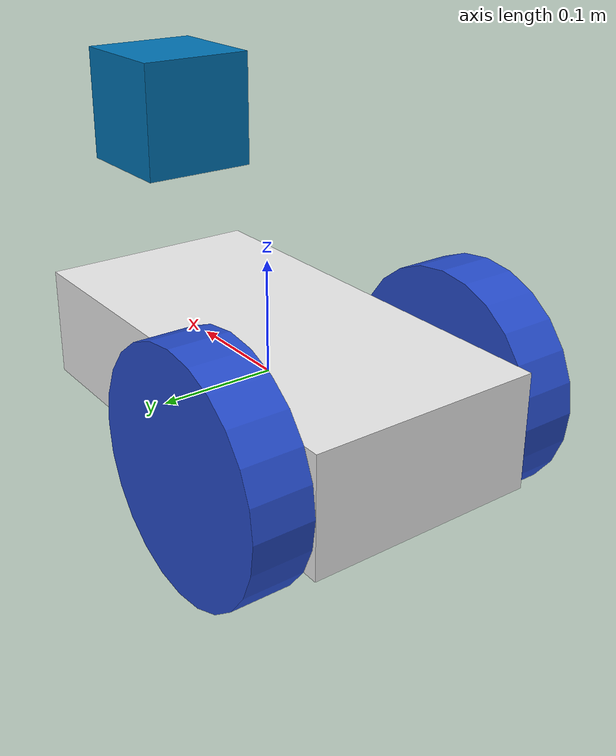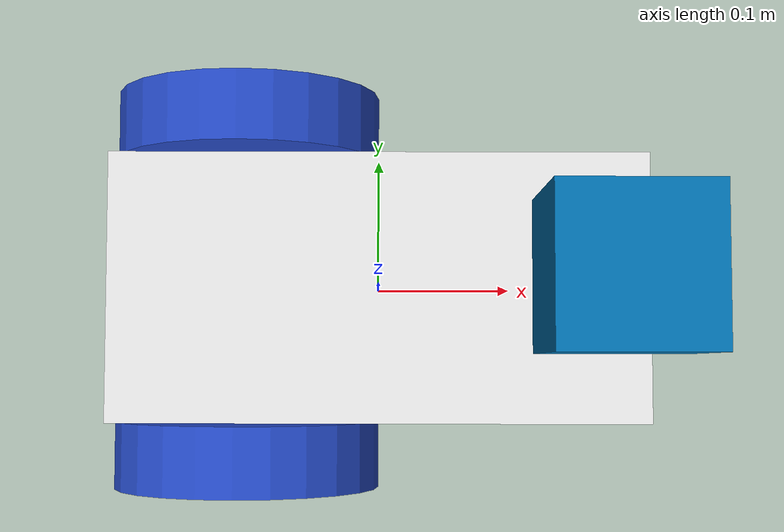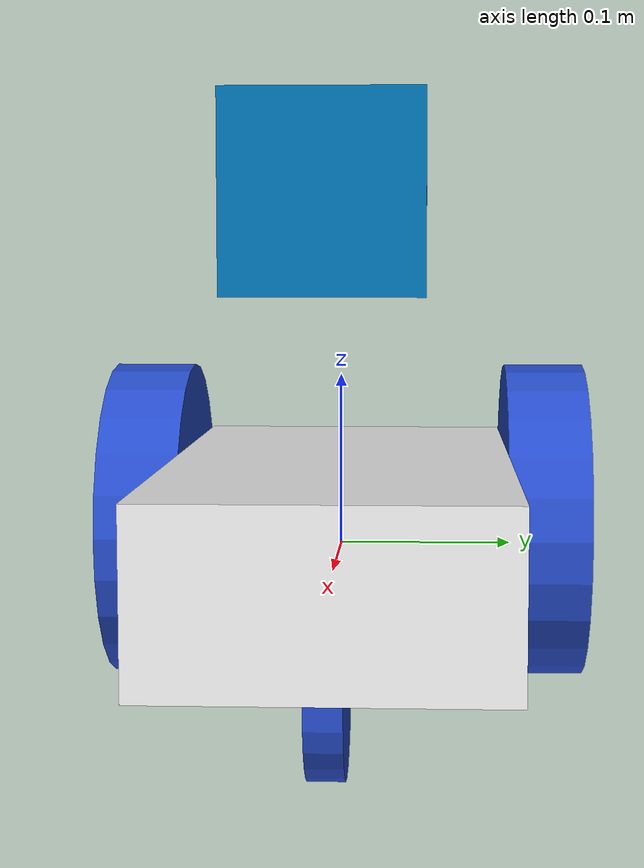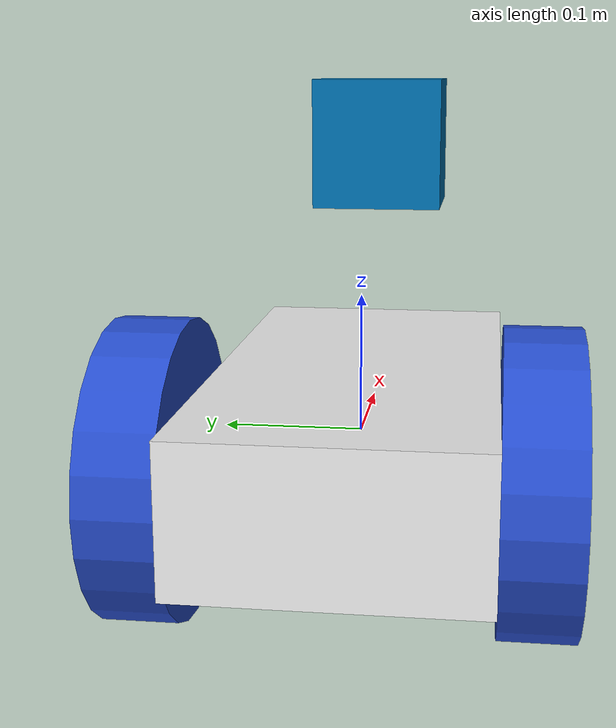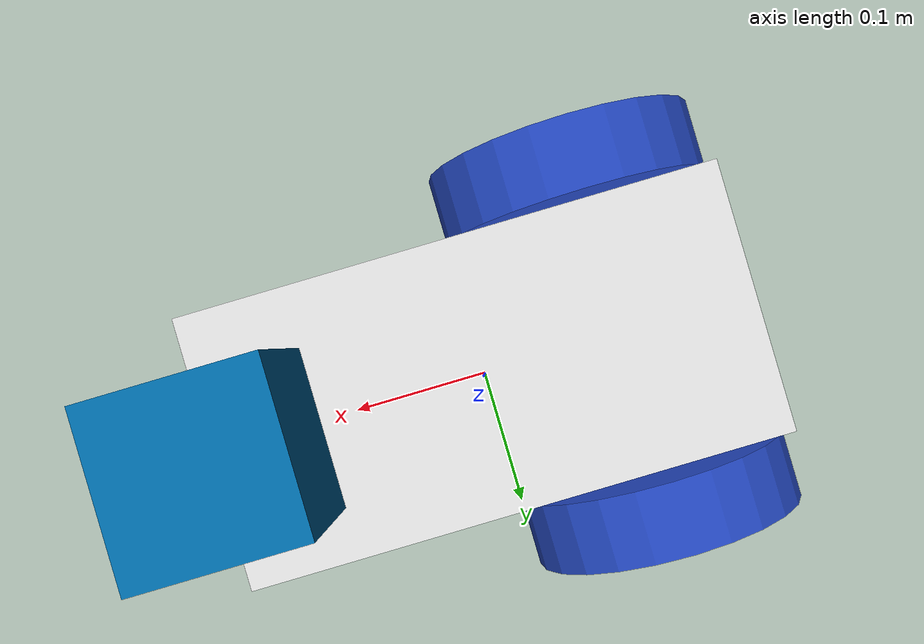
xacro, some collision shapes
<?xml version='1.0'?>

<robot name="myrobot" xmlns:xacro="http://www.ros.org/wiki/xacro">

<xacro:include filename="$(find 2wbot_description)/urdf/materials.xacro"/>
<xacro:include filename="$(find 2wbot_description)/urdf/2wbot.gazebo"/>

 <link name='chassis'>
    <pose>0 0 0.1 0 0 0</pose>

    <inertial>
      <mass value="2.0"/>
      <origin xyz="0.0 0 0.1" rpy=" 0 0 0"/>
      <inertia
          ixx="0.008333" ixy="0" ixz="0"
          iyy="0.028333" iyz="0"
          izz="0.033333"
      />
    </inertial>

    <collision name='collision'>
      <geometry>
        <box size=".4 .2 .1"/>
      </geometry>
    </collision>

    <visual name='chassis_visual'>
      <origin xyz="0 0 0" rpy=" 0 0 0"/>
      <geometry>
        <box size=".4 .2 .1"/>
      </geometry>
      <material name="white"/>
    </visual>

  </link>

  <link name="left_wheel">
    <!--origin xyz="0.1 0.13 0.1" rpy="0 1.5707 1.5707"/-->
    <collision name="collision">
      <origin xyz="0 0 0" rpy="0 1.5707 1.5707"/>
      <geometry>
        <cylinder radius="0.1" length="0.05"/>
      </geometry>
    </collision>
    <visual name="left_wheel_visual">
      <origin xyz="0 0 0" rpy="0 1.5707 1.5707"/>
      <geometry>
        <cylinder radius="0.1" length="0.05"/>
      </geometry>
      <material name="blue"/>
    </visual>
    <inertial>
      <origin xyz="0 0 0" rpy="0 1.5707 1.5707"/>
      <mass value="1"/>
      <inertia
        ixx=".002708" ixy="0.0" ixz="0.0"
        iyy=".002708" iyz="0.0"
        izz=".005"/>
    </inertial>
  </link>

  <link name="right_wheel">
    <!--origin xyz="0.1 -0.13 0.1" rpy="0 1.5707 1.5707"/-->
    <collision name="collision">
      <origin xyz="0 0 0" rpy="0 1.5707 1.5707"/>
      <geometry>
        <cylinder radius="0.1" length="0.05"/>
      </geometry>
    </collision>
    <visual name="right_wheel_visual">
      <origin xyz="0 0 0" rpy="0 1.5707 1.5707"/>
      <geometry>
        <cylinder radius="0.1" length="0.05"/>
      </geometry>
      <material name="blue"/>
    </visual>
    <inertial>
      <origin xyz="0 0 0" rpy="0 1.5707 1.5707"/>
      <mass value="1"/>
      <inertia
        ixx=".002708" ixy="0.0" ixz="0.0"
        iyy=".002708" iyz="0.0"
        izz=".005"/>
    </inertial>
  </link>

  <link name="caster_wheel">
    <!--origin xyz="0.1 -0.13 0.1" rpy="0 1.5707 1.5707"/-->
    <collision name="collision">
      <origin xyz="0 0 0" rpy="0 1.5707 1.5707"/>
      <geometry>
        <cylinder radius="0.05" length="0.02"/>
      </geometry>
    </collision>
    <visual name="caster_wheel_visual">
      <origin xyz="0 0 0" rpy="0 1.5707 1.5707"/>
      <geometry>
        <cylinder radius="0.05" length="0.02"/>
      </geometry>
      <material name="blue"/>
    </visual>
    <inertial>
      <origin xyz="0 0 0" rpy="0 0 0"/>
      <mass value="0.5"/>
      <inertia
        ixx=".000329" ixy="0.0" ixz="0.0"
        iyy=".000329" iyz="0.0"
        izz=".000625"/>
    </inertial>
  </link>

  <joint type="continuous" name="left_wheel_hinge">
    <origin xyz="-0.1 0.125 0" rpy="0 0 0"/>
    <!--origin xyz="0.1 0.13 0" rpy="0 1.5707 1.5707"/-->
    <child link="left_wheel"/>
    <parent link="chassis"/>
    <axis xyz="0 1 0" rpy="0 0 0"/>
    <joint_properties damping="0.0" friction="0.0"/>
  </joint>

  <joint type="continuous" name="right_wheel_hinge">
    <origin xyz="-0.1 -0.125 0" rpy="0 0 0"/>
    <!--origin xyz="0.1 -0.13 0" rpy="0 1.5707 1.5707"/-->
    <child link="right_wheel"/>
    <parent link="chassis"/>
    <axis xyz="0 1 0" rpy="0 0 0"/>
    <joint_properties damping="0.0" friction="0.0"/>
  </joint>

  <joint type="continuous" name="caster_wheel_hinge">
    <origin xyz="0.15 0 -0.05" rpy=" 0 0 0"/>
    <child link="caster_wheel"/>
    <parent link="chassis"/>
    <axis xyz="0 1 0" rpy="0 0 0"/>
    <joint_properties damping="0.0" friction="0.0"/>
  </joint>

  <joint name="hokuyo_joint" type="fixed">
    <axis xyz="0 1 0" />
    <origin xyz="0.15 0 0.2" rpy="0 0 0"/>
    <parent link="chassis"/>
    <child link="hokuyo_link"/>
  </joint>

  <!-- Hokuyo Laser -->
  <link name="hokuyo_link">
    <collision>
      <origin xyz="0 0 0" rpy="0 0 0"/>
      <geometry>
    <box size="0.1 0.1 0.1"/>
      </geometry>
    </collision>

    <visual>
      <origin xyz="0 0 0" rpy="0 0 0"/>
      <geometry>
        <mesh filename="package://rrbot_description/meshes/hokuyo.dae"/>
      </geometry>
    </visual>

    <inertial>
      <mass value="1e-5" />
      <origin xyz="0 0 0" rpy="0 0 0"/>
      <inertia ixx="1e-6" ixy="0" ixz="0" iyy="1e-6" iyz="0" izz="1e-6" />
    </inertial>
  </link>

</robot>
